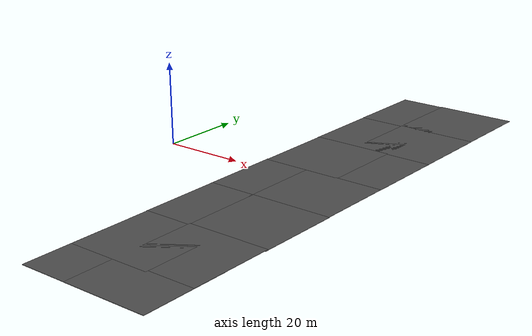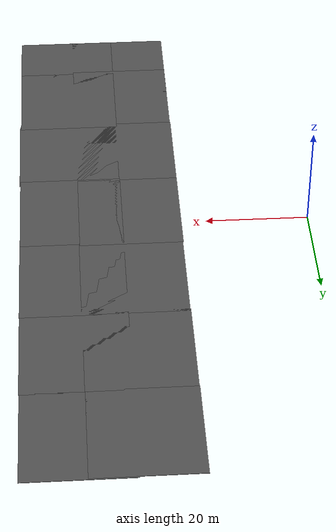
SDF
<sdf version="1.6">
 <world name="default">
  <light name="sun" type="directional">
   <pose>0 0 10 0 -0 0</pose>
   <diffuse>0.8 0.8 0.8 1</diffuse>
   <specular>0.1 0.1 0.1 1</specular>
   <attenuation>
    <range>1000</range>
    <constant>0.9</constant>
    <linear>0.01</linear>
    <quadratic>0.001</quadratic>
   </attenuation>
   <direction>-0.5 0.5 -1</direction>
  </light>
  <gravity>0 0 -9.8</gravity>
  <magnetic_field>6e-06 2.3e-05 -4.2e-05</magnetic_field>
  <atmosphere type="adiabatic"/>
  <physics name="default_physics" default="0" type="ode">
   <max_step_size>0.001</max_step_size>
   <real_time_factor>1</real_time_factor>
   <real_time_update_rate>1000</real_time_update_rate>
  </physics>
  <scene><ambient>0.4 0.4 0.4 1</ambient><background>0.7 0.7 0.7 1</background><shadows>1</shadows></scene>
  <spherical_coordinates>
   <surface_model>EARTH_WGS84</surface_model>
   <latitude_deg>0</latitude_deg>
   <longitude_deg>0</longitude_deg>
   <elevation>0</elevation>
   <heading_deg>0</heading_deg>
  </spherical_coordinates>
  <model name="asphalt_plane">
   <static>1</static>
   <link name="link">
    <collision name="collision"><geometry><box><size>20 20 0.1</size></box></geometry></collision>
    <visual name="visual">
     <cast_shadows>0</cast_shadows>
     <geometry><box><size>20 20 0.1</size></box></geometry>
     <material>
      <script>
       <uri>model://asphalt_plane/materials/scripts</uri>
       <uri>model://asphalt_plane/materials/textures</uri>
       <name>vrc/asphalt</name>
      </script>
     </material>
    </visual>
   </link>
   <pose>46.1844 54.839 0 0 -0 0</pose>
  </model>
  <model name="asphalt_plane_clone">
   <static>1</static>
   <link name="link">
    <collision name="collision"><geometry><box><size>20 20 0.1</size></box></geometry></collision>
    <visual name="visual">
     <cast_shadows>0</cast_shadows>
     <geometry><box><size>20 20 0.1</size></box></geometry>
     <material>
      <script>
       <uri>model://asphalt_plane/materials/scripts</uri>
       <uri>model://asphalt_plane/materials/textures</uri>
       <name>vrc/asphalt</name>
      </script>
     </material>
    </visual>
   </link>
   <pose>34.6946 54.587 0 0 -0 0</pose>
  </model>
  <model name="asphalt_plane_clone_0">
   <static>1</static>
   <link name="link">
    <collision name="collision"><geometry><box><size>20 20 0.1</size></box></geometry></collision>
    <visual name="visual">
     <cast_shadows>0</cast_shadows>
     <geometry><box><size>20 20 0.1</size></box></geometry>
     <material>
      <script>
       <uri>model://asphalt_plane/materials/scripts</uri>
       <uri>model://asphalt_plane/materials/textures</uri>
       <name>vrc/asphalt</name>
      </script>
     </material>
    </visual>
   </link>
   <pose>46.2523 35.0188 0 0 -0 0</pose>
  </model>
  <model name="asphalt_plane_clone_1">
   <static>1</static>
   <link name="link">
    <collision name="collision"><geometry><box><size>20 20 0.1</size></box></geometry></collision>
    <visual name="visual">
     <cast_shadows>0</cast_shadows>
     <geometry><box><size>20 20 0.1</size></box></geometry>
     <material>
      <script>
       <uri>model://asphalt_plane/materials/scripts</uri>
       <uri>model://asphalt_plane/materials/textures</uri>
       <name>vrc/asphalt</name>
      </script>
     </material>
    </visual>
   </link>
   <pose>34.7764 34.8554 0 0 -0 0</pose>
  </model>
  <model name="asphalt_plane_clone_2">
   <static>1</static>
   <link name="link">
    <collision name="collision"><geometry><box><size>20 20 0.1</size></box></geometry></collision>
    <visual name="visual">
     <cast_shadows>0</cast_shadows>
     <geometry><box><size>20 20 0.1</size></box></geometry>
     <material>
      <script>
       <uri>model://asphalt_plane/materials/scripts</uri>
       <uri>model://asphalt_plane/materials/textures</uri>
       <name>vrc/asphalt</name>
      </script>
     </material>
    </visual>
   </link>
   <pose>46.2769 15.5334 0 0 -0 0</pose>
  </model>
  <model name="asphalt_plane_clone_3">
   <static>1</static>
   <link name="link">
    <collision name="collision"><geometry><box><size>20 20 0.1</size></box></geometry></collision>
    <visual name="visual">
     <cast_shadows>0</cast_shadows>
     <geometry><box><size>20 20 0.1</size></box></geometry>
     <material>
      <script>
       <uri>model://asphalt_plane/materials/scripts</uri>
       <uri>model://asphalt_plane/materials/textures</uri>
       <name>vrc/asphalt</name>
      </script>
     </material>
    </visual>
   </link>
   <pose>34.8857 15.3718 0 0 -0 0</pose>
  </model>
  <model name="asphalt_plane_clone_4">
   <static>1</static>
   <link name="link">
    <collision name="collision"><geometry><box><size>20 20 0.1</size></box></geometry></collision>
    <visual name="visual">
     <cast_shadows>0</cast_shadows>
     <geometry><box><size>20 20 0.1</size></box></geometry>
     <material>
      <script>
       <uri>model://asphalt_plane/materials/scripts</uri>
       <uri>model://asphalt_plane/materials/textures</uri>
       <name>vrc/asphalt</name>
      </script>
     </material>
    </visual>
   </link>
   <pose>46.2299 -4.42832 0 0 -0 0</pose>
  </model>
  <model name="asphalt_plane_clone_5">
   <static>1</static>
   <link name="link">
    <collision name="collision"><geometry><box><size>20 20 0.1</size></box></geometry></collision>
    <visual name="visual">
     <cast_shadows>0</cast_shadows>
     <geometry><box><size>20 20 0.1</size></box></geometry>
     <material>
      <script>
       <uri>model://asphalt_plane/materials/scripts</uri>
       <uri>model://asphalt_plane/materials/textures</uri>
       <name>vrc/asphalt</name>
      </script>
     </material>
    </visual>
   </link>
   <pose>34.7584 -4.07161 0 0 -0 0</pose>
  </model>
  <model name="asphalt_plane_clone_6">
   <static>1</static>
   <link name="link">
    <collision name="collision"><geometry><box><size>20 20 0.1</size></box></geometry></collision>
    <visual name="visual">
     <cast_shadows>0</cast_shadows>
     <geometry><box><size>20 20 0.1</size></box></geometry>
     <material>
      <script>
       <uri>model://asphalt_plane/materials/scripts</uri>
       <uri>model://asphalt_plane/materials/textures</uri>
       <name>vrc/asphalt</name>
      </script>
     </material>
    </visual>
   </link>
   <pose>46.3632 -23.0832 0 0 -0 0</pose>
  </model>
  <model name="asphalt_plane_clone_7">
   <static>1</static>
   <link name="link">
    <collision name="collision"><geometry><box><size>20 20 0.1</size></box></geometry></collision>
    <visual name="visual">
     <cast_shadows>0</cast_shadows>
     <geometry><box><size>20 20 0.1</size></box></geometry>
     <material>
      <script>
       <uri>model://asphalt_plane/materials/scripts</uri>
       <uri>model://asphalt_plane/materials/textures</uri>
       <name>vrc/asphalt</name>
      </script>
     </material>
    </visual>
   </link>
   <pose>34.7683 -23.1683 0 0 -0 0</pose>
  </model>
  <model name="asphalt_plane_clone_8">
   <static>1</static>
   <link name="link">
    <collision name="collision"><geometry><box><size>20 20 0.1</size></box></geometry></collision>
    <visual name="visual">
     <cast_shadows>0</cast_shadows>
     <geometry><box><size>20 20 0.1</size></box></geometry>
     <material>
      <script>
       <uri>model://asphalt_plane/materials/scripts</uri>
       <uri>model://asphalt_plane/materials/textures</uri>
       <name>vrc/asphalt</name>
      </script>
     </material>
    </visual>
   </link>
   <pose>46.161 -42.1848 0 0 -0 0</pose>
  </model>
  <model name="asphalt_plane_clone_9">
   <static>1</static>
   <link name="link">
    <collision name="collision"><geometry><box><size>20 20 0.1</size></box></geometry></collision>
    <visual name="visual">
     <cast_shadows>0</cast_shadows>
     <geometry><box><size>20 20 0.1</size></box></geometry>
     <material>
      <script>
       <uri>model://asphalt_plane/materials/scripts</uri>
       <uri>model://asphalt_plane/materials/textures</uri>
       <name>vrc/asphalt</name>
      </script>
     </material>
    </visual>
   </link>
   <pose>34.8704 -42.7974 0 0 -0 0</pose>
  </model>
  <model name="asphalt_plane_clone_10">
   <static>1</static>
   <link name="link">
    <collision name="collision"><geometry><box><size>20 20 0.1</size></box></geometry></collision>
    <visual name="visual">
     <cast_shadows>0</cast_shadows>
     <geometry><box><size>20 20 0.1</size></box></geometry>
     <material>
      <script>
       <uri>model://asphalt_plane/materials/scripts</uri>
       <uri>model://asphalt_plane/materials/textures</uri>
       <name>vrc/asphalt</name>
      </script>
     </material>
    </visual>
   </link>
   <pose>46.2072 -54.321 0 0 -0 0</pose>
  </model>
  <model name="asphalt_plane_clone_11">
   <static>1</static>
   <link name="link">
    <collision name="collision"><geometry><box><size>20 20 0.1</size></box></geometry></collision>
    <visual name="visual">
     <cast_shadows>0</cast_shadows>
     <geometry><box><size>20 20 0.1</size></box></geometry>
     <material>
      <script>
       <uri>model://asphalt_plane/materials/scripts</uri>
       <uri>model://asphalt_plane/materials/textures</uri>
       <name>vrc/asphalt</name>
      </script>
     </material>
    </visual>
   </link>
   <pose>34.8441 -54.2933 0 0 -0 0</pose>
  </model>
 </world>
</sdf>
